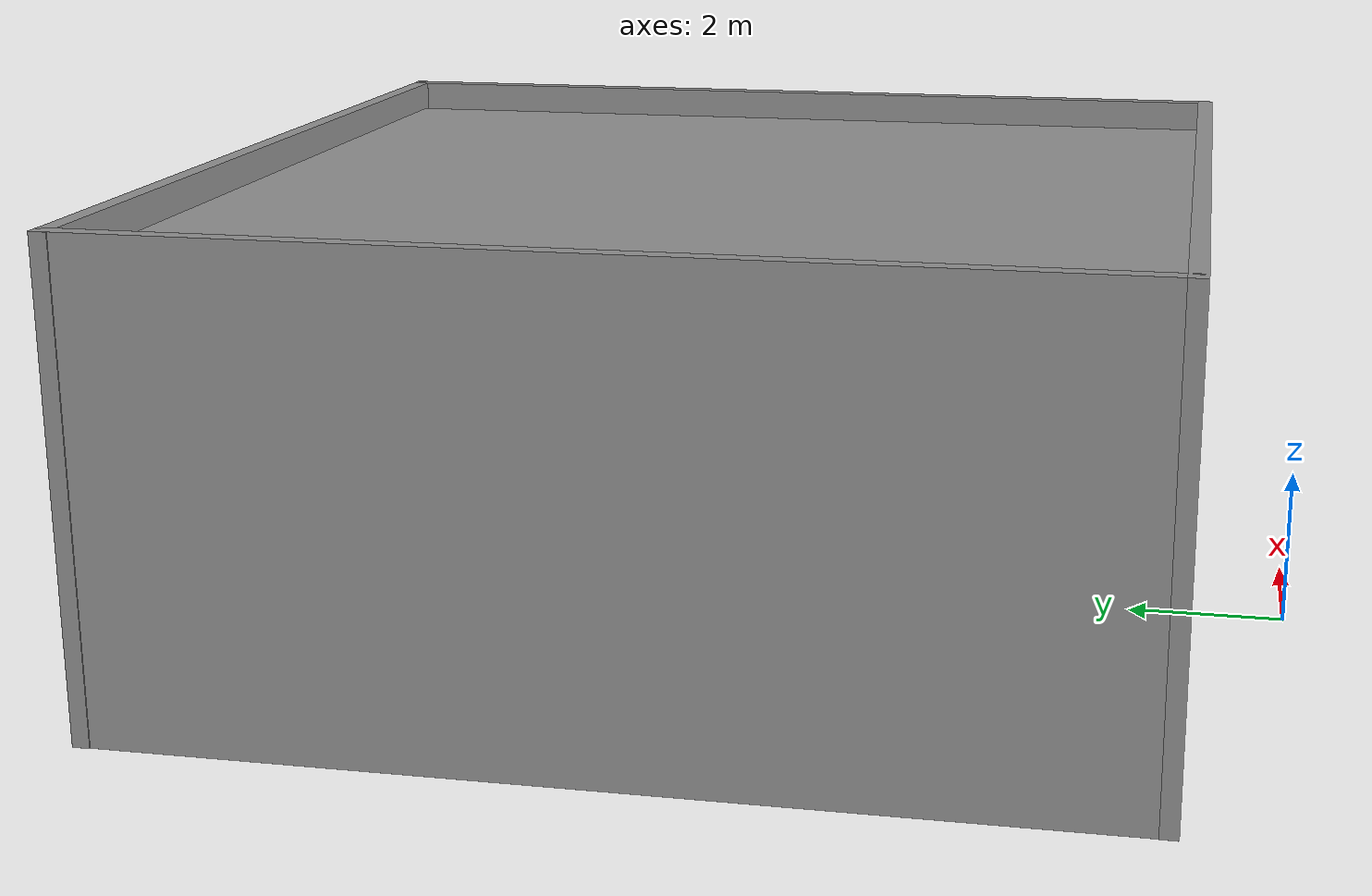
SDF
<?xml version='1.0'?>
<sdf version='1.6'>
  <model name='office_simple'>
    <link name='link'>
      <pose frame=''>-1.95575 1.34148 3.39662 0 -0 0</pose>
      <self_collide>0</self_collide>
      <enable_wind>0</enable_wind>
      <kinematic>0</kinematic>
      <inertial>
        <inertia>
          <ixx>nan</ixx>
          <ixy>0</ixy>
          <ixz>0</ixz>
          <iyy>nan</iyy>
          <iyz>0</iyz>
          <izz>nan</izz>
        </inertia>
        <mass>0</mass>
        <pose frame=''>0 0 0 0 -0 0</pose>
      </inertial>
      <visual name='visual'>
        <cast_shadows>0</cast_shadows>
        <geometry>
          <box>
            <size>11.6509 0.2 5.63018</size>
          </box>
        </geometry>
        <material>
          <script>
            <uri>model://grey_wall/materials/scripts</uri>
            <uri>model://grey_wall/materials/textures</uri>
            <name>vrc/grey_wall</name>
          </script>
        </material>
        <pose frame=''>0 0 0 0 -0 0</pose>
        <transparency>0</transparency>
      </visual>
      <collision name='collision'>
        <laser_retro>0</laser_retro>
        <max_contacts>10</max_contacts>
        <pose frame=''>0 0 0 0 -0 0</pose>
        <geometry>
          <box>
            <size>11.6509 0.2 5.63018</size>
          </box>
        </geometry>
        <surface>
          <friction>
            <ode>
              <mu>1</mu>
              <mu2>1</mu2>
              <fdir1>0 0 0</fdir1>
              <slip1>0</slip1>
              <slip2>0</slip2>
            </ode>
            <torsional>
              <coefficient>1</coefficient>
              <patch_radius>0</patch_radius>
              <surface_radius>0</surface_radius>
              <use_patch_radius>1</use_patch_radius>
              <ode>
                <slip>0</slip>
              </ode>
            </torsional>
          </friction>
          <bounce>
            <restitution_coefficient>0</restitution_coefficient>
            <threshold>1e+06</threshold>
          </bounce>
          <contact>
            <collide_without_contact>0</collide_without_contact>
            <collide_without_contact_bitmask>1</collide_without_contact_bitmask>
            <collide_bitmask>1</collide_bitmask>
            <ode>
              <soft_cfm>0</soft_cfm>
              <soft_erp>0.2</soft_erp>
              <kp>1e+13</kp>
              <kd>1</kd>
              <max_vel>0.01</max_vel>
              <min_depth>0</min_depth>
            </ode>
            <bullet>
              <split_impulse>1</split_impulse>
              <split_impulse_penetration_threshold>-0.01</split_impulse_penetration_threshold>
              <soft_cfm>0</soft_cfm>
              <soft_erp>0.2</soft_erp>
              <kp>1e+13</kp>
              <kd>1</kd>
            </bullet>
          </contact>
        </surface>
      </collision>
    </link>
    <link name='link_clone_0'>
      <pose frame=''>3.71982 7.10283 3.39662 0 0 -1.56276</pose>
      <self_collide>0</self_collide>
      <enable_wind>0</enable_wind>
      <kinematic>0</kinematic>
      <inertial>
        <inertia>
          <ixx>nan</ixx>
          <ixy>0</ixy>
          <ixz>0</ixz>
          <iyy>nan</iyy>
          <iyz>0</iyz>
          <izz>nan</izz>
        </inertia>
        <mass>0</mass>
        <pose frame=''>0 0 0 0 -0 0</pose>
      </inertial>
      <visual name='visual'>
        <cast_shadows>0</cast_shadows>
        <geometry>
          <box>
            <size>11.6509 0.2 5.63018</size>
          </box>
        </geometry>
        <material>
          <script>
            <uri>model://grey_wall/materials/scripts</uri>
            <uri>model://grey_wall/materials/textures</uri>
            <name>vrc/grey_wall</name>
          </script>
          <shader type='pixel'/>
        </material>
        <pose frame=''>0 0 0 0 -0 0</pose>
        <transparency>0</transparency>
      </visual>
      <collision name='collision'>
        <laser_retro>0</laser_retro>
        <max_contacts>10</max_contacts>
        <pose frame=''>0 0 0 0 -0 0</pose>
        <geometry>
          <box>
            <size>11.6509 0.2 5.63018</size>
          </box>
        </geometry>
        <surface>
          <friction>
            <ode>
              <mu>1</mu>
              <mu2>1</mu2>
              <fdir1>0 0 0</fdir1>
              <slip1>0</slip1>
              <slip2>0</slip2>
            </ode>
            <torsional>
              <coefficient>1</coefficient>
              <patch_radius>0</patch_radius>
              <surface_radius>0</surface_radius>
              <use_patch_radius>1</use_patch_radius>
              <ode>
                <slip>0</slip>
              </ode>
            </torsional>
          </friction>
          <bounce>
            <restitution_coefficient>0</restitution_coefficient>
            <threshold>1e+06</threshold>
          </bounce>
          <contact>
            <collide_without_contact>0</collide_without_contact>
            <collide_without_contact_bitmask>1</collide_without_contact_bitmask>
            <collide_bitmask>1</collide_bitmask>
            <ode>
              <soft_cfm>0</soft_cfm>
              <soft_erp>0.2</soft_erp>
              <kp>1e+13</kp>
              <kd>1</kd>
              <max_vel>0.01</max_vel>
              <min_depth>0</min_depth>
            </ode>
            <bullet>
              <split_impulse>1</split_impulse>
              <split_impulse_penetration_threshold>-0.01</split_impulse_penetration_threshold>
              <soft_cfm>0</soft_cfm>
              <soft_erp>0.2</soft_erp>
              <kp>1e+13</kp>
              <kd>1</kd>
            </bullet>
          </contact>
        </surface>
      </collision>
    </link>
    <link name='link_clone_0_clone'>
      <pose frame=''>-7.7194 7.10341 3.39662 0 0 -1.56276</pose>
      <self_collide>0</self_collide>
      <enable_wind>0</enable_wind>
      <kinematic>0</kinematic>
      <inertial>
        <inertia>
          <ixx>nan</ixx>
          <ixy>0</ixy>
          <ixz>0</ixz>
          <iyy>nan</iyy>
          <iyz>0</iyz>
          <izz>nan</izz>
        </inertia>
        <mass>0</mass>
        <pose frame=''>0 0 0 0 -0 0</pose>
      </inertial>
      <visual name='visual'>
        <cast_shadows>0</cast_shadows>
        <geometry>
          <box>
            <size>11.6509 0.2 5.63018</size>
          </box>
        </geometry>
        <material>
          <script>
            <uri>model://grey_wall/materials/scripts</uri>
            <uri>model://grey_wall/materials/textures</uri>
            <name>vrc/grey_wall</name>
          </script>
          <shader type='pixel'/>
        </material>
        <pose frame=''>0 0 0 0 -0 0</pose>
        <transparency>0</transparency>
      </visual>
      <collision name='collision'>
        <laser_retro>0</laser_retro>
        <max_contacts>10</max_contacts>
        <pose frame=''>0 0 0 0 -0 0</pose>
        <geometry>
          <box>
            <size>11.6509 0.2 5.63018</size>
          </box>
        </geometry>
        <surface>
          <friction>
            <ode>
              <mu>1</mu>
              <mu2>1</mu2>
              <fdir1>0 0 0</fdir1>
              <slip1>0</slip1>
              <slip2>0</slip2>
            </ode>
            <torsional>
              <coefficient>1</coefficient>
              <patch_radius>0</patch_radius>
              <surface_radius>0</surface_radius>
              <use_patch_radius>1</use_patch_radius>
              <ode>
                <slip>0</slip>
              </ode>
            </torsional>
          </friction>
          <bounce>
            <restitution_coefficient>0</restitution_coefficient>
            <threshold>1e+06</threshold>
          </bounce>
          <contact>
            <collide_without_contact>0</collide_without_contact>
            <collide_without_contact_bitmask>1</collide_without_contact_bitmask>
            <collide_bitmask>1</collide_bitmask>
            <ode>
              <soft_cfm>0</soft_cfm>
              <soft_erp>0.2</soft_erp>
              <kp>1e+13</kp>
              <kd>1</kd>
              <max_vel>0.01</max_vel>
              <min_depth>0</min_depth>
            </ode>
            <bullet>
              <split_impulse>1</split_impulse>
              <split_impulse_penetration_threshold>-0.01</split_impulse_penetration_threshold>
              <soft_cfm>0</soft_cfm>
              <soft_erp>0.2</soft_erp>
              <kp>1e+13</kp>
              <kd>1</kd>
            </bullet>
          </contact>
        </surface>
      </collision>
    </link>
    <link name='link_clone_0_clone_0'>
      <pose frame=''>-2.09862 7.04327 5.73647 1.5726 -0 -1.56276</pose>
      <self_collide>0</self_collide>
      <enable_wind>0</enable_wind>
      <kinematic>0</kinematic>
      <inertial>
        <inertia>
          <ixx>nan</ixx>
          <ixy>0</ixy>
          <ixz>0</ixz>
          <iyy>nan</iyy>
          <iyz>0</iyz>
          <izz>nan</izz>
        </inertia>
        <mass>0</mass>
        <pose frame=''>0 0 0 0 -0 0</pose>
      </inertial>
      <visual name='visual'>
        <cast_shadows>0</cast_shadows>
        <geometry>
          <box>
            <size>11.4489 0.212066 11.2025</size>
          </box>
        </geometry>
        <material>
          <script>
            <uri>model://grey_wall/materials/scripts</uri>
            <uri>model://grey_wall/materials/textures</uri>
            <name>vrc/grey_wall</name>
          </script>
          <shader type='pixel'/>
        </material>
        <pose frame=''>0 0 0 0 -0 0</pose>
        <transparency>0</transparency>
      </visual>
      <collision name='collision'>
        <laser_retro>0</laser_retro>
        <max_contacts>10</max_contacts>
        <pose frame=''>0 0 0 0 -0 0</pose>
        <geometry>
          <box>
            <size>11.4489 0.212066 11.2025</size>
          </box>
        </geometry>
        <surface>
          <friction>
            <ode>
              <mu>1</mu>
              <mu2>1</mu2>
              <fdir1>0 0 0</fdir1>
              <slip1>0</slip1>
              <slip2>0</slip2>
            </ode>
            <torsional>
              <coefficient>1</coefficient>
              <patch_radius>0</patch_radius>
              <surface_radius>0</surface_radius>
              <use_patch_radius>1</use_patch_radius>
              <ode>
                <slip>0</slip>
              </ode>
            </torsional>
          </friction>
          <bounce>
            <restitution_coefficient>0</restitution_coefficient>
            <threshold>1e+06</threshold>
          </bounce>
          <contact>
            <collide_without_contact>0</collide_without_contact>
            <collide_without_contact_bitmask>1</collide_without_contact_bitmask>
            <collide_bitmask>1</collide_bitmask>
            <ode>
              <soft_cfm>0</soft_cfm>
              <soft_erp>0.2</soft_erp>
              <kp>1e+13</kp>
              <kd>1</kd>
              <max_vel>0.01</max_vel>
              <min_depth>0</min_depth>
            </ode>
            <bullet>
              <split_impulse>1</split_impulse>
              <split_impulse_penetration_threshold>-0.01</split_impulse_penetration_threshold>
              <soft_cfm>0</soft_cfm>
              <soft_erp>0.2</soft_erp>
              <kp>1e+13</kp>
              <kd>1</kd>
            </bullet>
          </contact>
        </surface>
      </collision>
    </link>
    <link name='link_clone_1'>
      <pose frame=''>-2.05377 12.8226 3.39662 0 -0 0</pose>
      <self_collide>0</self_collide>
      <enable_wind>0</enable_wind>
      <kinematic>0</kinematic>
      <inertial>
        <inertia>
          <ixx>nan</ixx>
          <ixy>0</ixy>
          <ixz>0</ixz>
          <iyy>nan</iyy>
          <iyz>0</iyz>
          <izz>nan</izz>
        </inertia>
        <mass>0</mass>
        <pose frame=''>0 0 0 0 -0 0</pose>
      </inertial>
      <visual name='visual'>
        <cast_shadows>0</cast_shadows>
        <geometry>
          <box>
            <size>11.6509 0.2 5.63018</size>
          </box>
        </geometry>
        <material>
          <script>
            <uri>model://grey_wall/materials/scripts</uri>
            <uri>model://grey_wall/materials/textures</uri>
            <name>vrc/grey_wall</name>
          </script>
          <shader type='pixel'/>
        </material>
        <pose frame=''>0 0 0 0 -0 0</pose>
        <transparency>0</transparency>
      </visual>
      <collision name='collision'>
        <laser_retro>0</laser_retro>
        <max_contacts>10</max_contacts>
        <pose frame=''>0 0 0 0 -0 0</pose>
        <geometry>
          <box>
            <size>11.6509 0.2 5.63018</size>
          </box>
        </geometry>
        <surface>
          <friction>
            <ode>
              <mu>1</mu>
              <mu2>1</mu2>
              <fdir1>0 0 0</fdir1>
              <slip1>0</slip1>
              <slip2>0</slip2>
            </ode>
            <torsional>
              <coefficient>1</coefficient>
              <patch_radius>0</patch_radius>
              <surface_radius>0</surface_radius>
              <use_patch_radius>1</use_patch_radius>
              <ode>
                <slip>0</slip>
              </ode>
            </torsional>
          </friction>
          <bounce>
            <restitution_coefficient>0</restitution_coefficient>
            <threshold>1e+06</threshold>
          </bounce>
          <contact>
            <collide_without_contact>0</collide_without_contact>
            <collide_without_contact_bitmask>1</collide_without_contact_bitmask>
            <collide_bitmask>1</collide_bitmask>
            <ode>
              <soft_cfm>0</soft_cfm>
              <soft_erp>0.2</soft_erp>
              <kp>1e+13</kp>
              <kd>1</kd>
              <max_vel>0.01</max_vel>
              <min_depth>0</min_depth>
            </ode>
            <bullet>
              <split_impulse>1</split_impulse>
              <split_impulse_penetration_threshold>-0.01</split_impulse_penetration_threshold>
              <soft_cfm>0</soft_cfm>
              <soft_erp>0.2</soft_erp>
              <kp>1e+13</kp>
              <kd>1</kd>
            </bullet>
          </contact>
        </surface>
      </collision>
    </link>
    <static>1</static>
    <allow_auto_disable>1</allow_auto_disable>
  </model>
</sdf>
